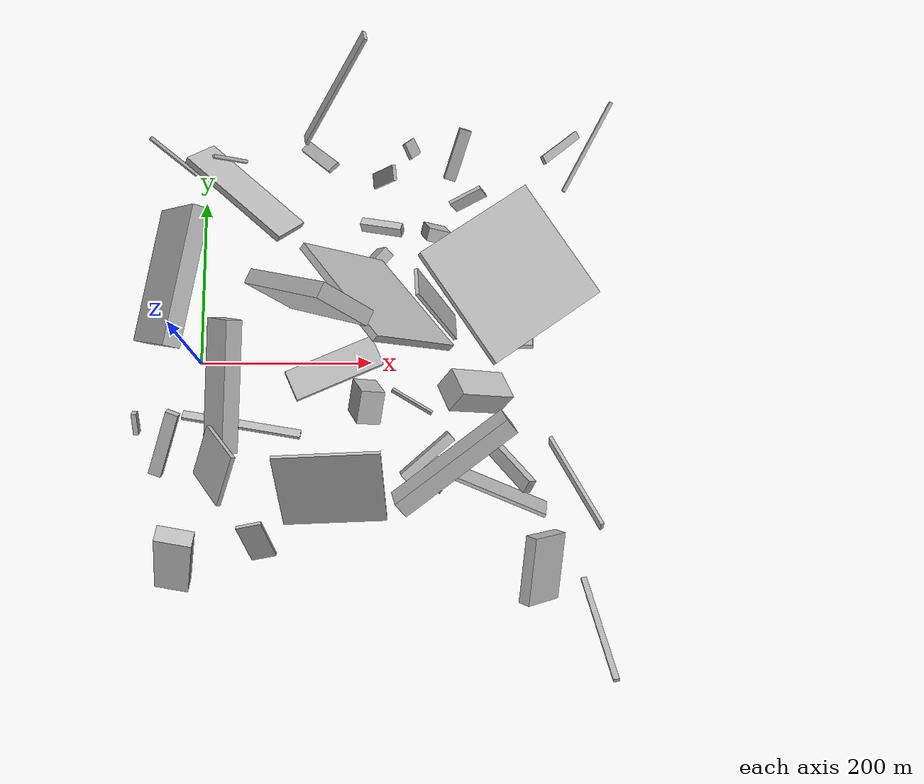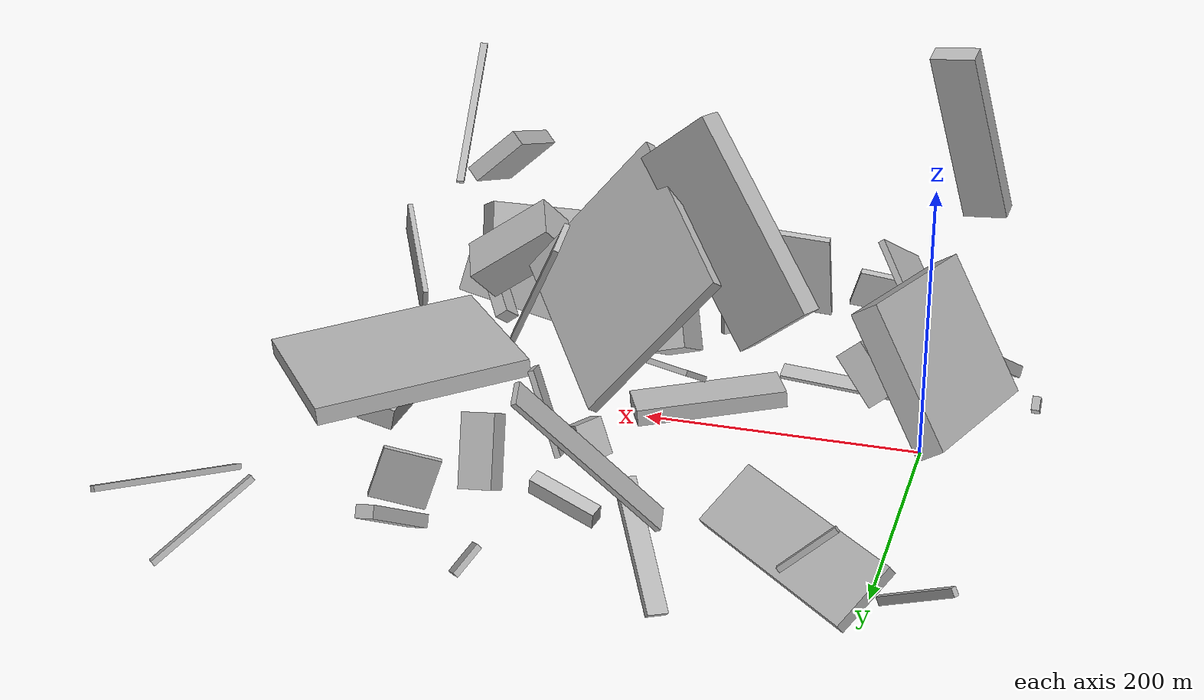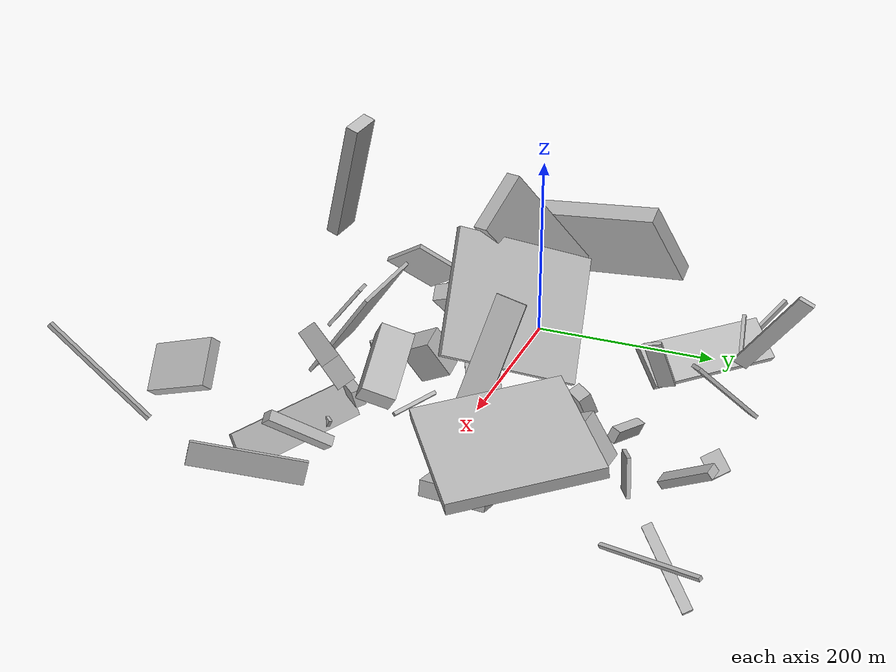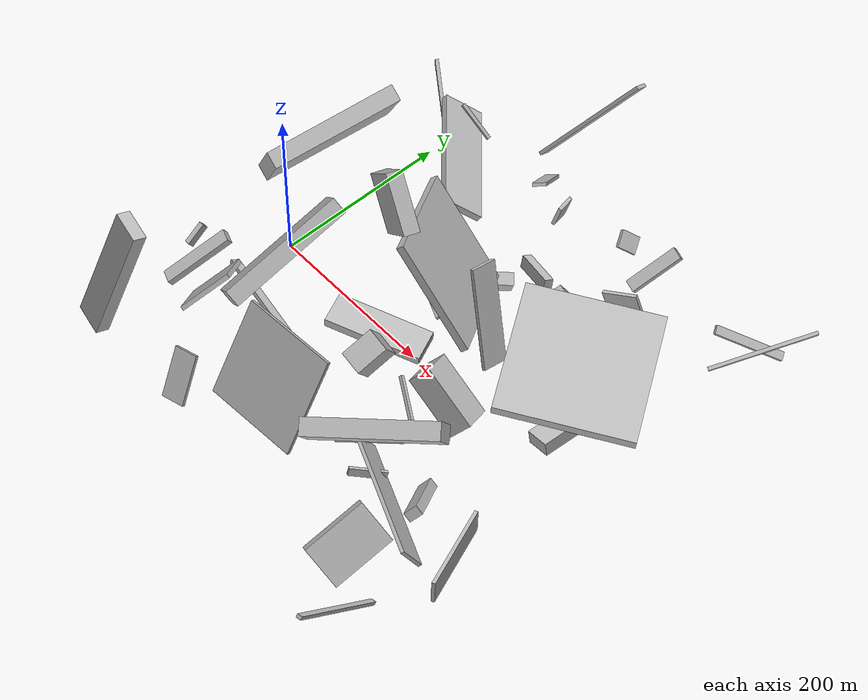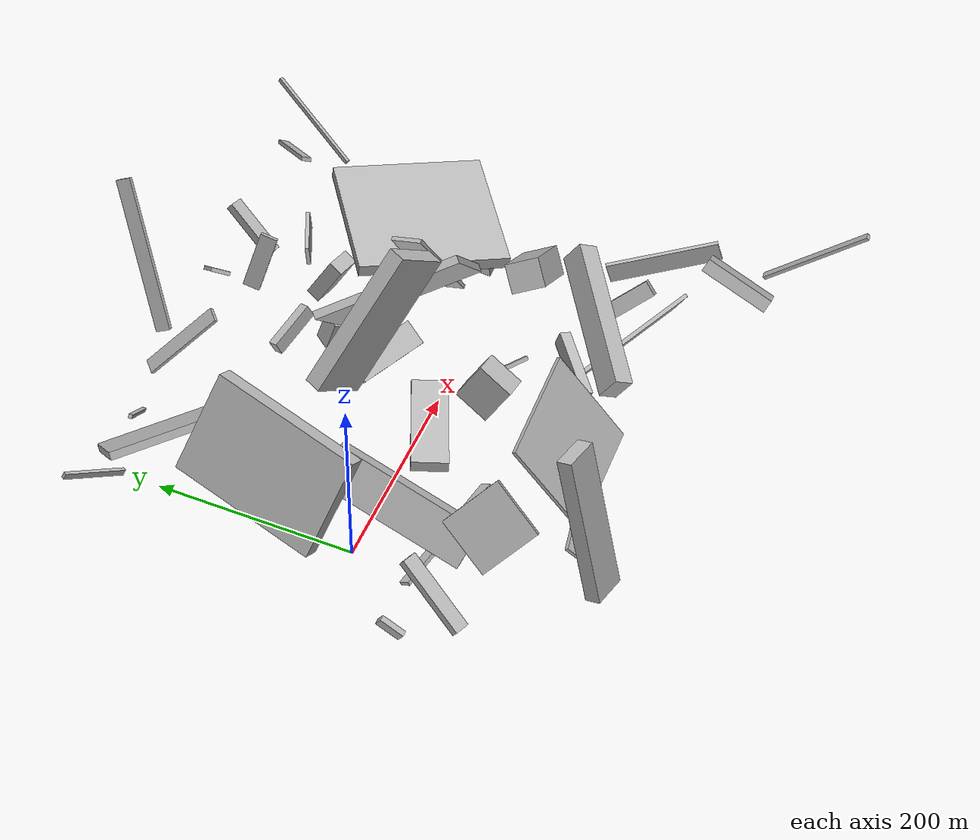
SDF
<sdf version="1.6">
 <world name="default">
  <scene>
   <sky><clouds><speed>12</speed></clouds></sky>
   <ambient>0.4 0.4 0.4 1</ambient>
   <background>0.7 0.7 0.7 1</background>
   <shadows>1</shadows>
  </scene>
  <gravity>0 0 -9.8066</gravity>
  <magnetic_field>6e-06 2.3e-05 -4.2e-05</magnetic_field>
  <physics default="0" name="default_physics" type="ode">
   <ode>
    <solver>
     <type>quick</type>
     <iters>10</iters>
     <sor>1.0</sor>
     <use_dynamic_moi_rescaling>0</use_dynamic_moi_rescaling>
    </solver>
    <constraints>
     <cfm>0</cfm>
     <erp>0.2</erp>
     <contact_max_correcting_vel>100</contact_max_correcting_vel>
     <contact_surface_layer>0.001</contact_surface_layer>
    </constraints>
   </ode>
   <max_step_size>0.004</max_step_size>
   <real_time_factor>1</real_time_factor>
   <real_time_update_rate>250</real_time_update_rate>
  </physics>
  <light name="sun" type="directional">
   <pose>0 0 10 0 0 0</pose>
   <diffuse>0.8 0.8 0.8 1</diffuse>
   <specular>0.2 0.2 0.2 1</specular>
   <attenuation>
    <range>1000</range>
    <constant>0.9</constant>
    <linear>0.01</linear>
    <quadratic>0.001</quadratic>
   </attenuation>
   <direction>-0.5 0.1 -0.9</direction>
  </light>
  <model name="building_1">
   <static>0</static>
   <pose>425.41884582298695 -145.96923131888164 33.68652082631902 -1.5123480149696447 -0.2445633406746255 -1.1243837225316533</pose>
   <link name="link">
    <gravity>0</gravity>
    <pose>0 0 2.0 0 0 0</pose>
    <collision name="collision"><geometry><box><size>113 25 4</size></box></geometry></collision>
    <visual name="visual">
     <cast_shadows>0</cast_shadows>
     <geometry><box><size>113 25 4</size></box></geometry>
     <material>
      <script>
       <uri>model://HANNAS_wall/materials/scripts</uri>
       <uri>model://HANNAS_wall/materials/textures</uri>
       <name>vrc/HANNAS_wall</name>
      </script>
     </material>
    </visual>
   </link>
  </model>
  <model name="building_2">
   <static>0</static>
   <pose>249.1018419877865 260.8764109453045 22.38938290813393 -0.5990334844402403 -0.6752568785302374 -2.233619556249659</pose>
   <link name="link">
    <gravity>0</gravity>
    <pose>0 0 2.0 0 0 0</pose>
    <collision name="collision"><geometry><box><size>24 20 4</size></box></geometry></collision>
    <visual name="visual">
     <cast_shadows>0</cast_shadows>
     <geometry><box><size>24 20 4</size></box></geometry>
     <material>
      <script>
       <uri>model://HANNAS_wall/materials/scripts</uri>
       <uri>model://HANNAS_wall/materials/textures</uri>
       <name>vrc/HANNAS_wall</name>
      </script>
     </material>
    </visual>
   </link>
  </model>
  <model name="building_3">
   <static>0</static>
   <pose>258.4251948768275 -111.10674847365107 36.97191823842569 -1.8116553040432277 0.157849931149378 -2.443473535293361</pose>
   <link name="link">
    <gravity>0</gravity>
    <pose>0 0 5.5 0 0 0</pose>
    <collision name="collision"><geometry><box><size>71 17 11</size></box></geometry></collision>
    <visual name="visual">
     <cast_shadows>0</cast_shadows>
     <geometry><box><size>71 17 11</size></box></geometry>
     <material>
      <script>
       <uri>model://HANNAS_wall/materials/scripts</uri>
       <uri>model://HANNAS_wall/materials/textures</uri>
       <name>vrc/HANNAS_wall</name>
      </script>
     </material>
    </visual>
   </link>
  </model>
  <model name="building_4">
   <static>0</static>
   <pose>315.4782951416325 193.17962473088272 35.478197174813964 1.5624156566761027 -0.33057298251725853 0.39293857082469835</pose>
   <link name="link">
    <gravity>0</gravity>
    <pose>0 0 2.0 0 0 0</pose>
    <collision name="collision"><geometry><box><size>40 38 4</size></box></geometry></collision>
    <visual name="visual">
     <cast_shadows>0</cast_shadows>
     <geometry><box><size>40 38 4</size></box></geometry>
     <material>
      <script>
       <uri>model://HANNAS_wall/materials/scripts</uri>
       <uri>model://HANNAS_wall/materials/textures</uri>
       <name>vrc/HANNAS_wall</name>
      </script>
     </material>
    </visual>
   </link>
  </model>
  <model name="building_5">
   <static>0</static>
   <pose>294.2843214857264 27.603662806520333 58.93577640061621 -0.27344497462733347 -0.4052798947871393 0.1297833659575057</pose>
   <link name="link">
    <gravity>0</gravity>
    <pose>0 0 56.5 0 0 0</pose>
    <collision name="collision"><geometry><box><size>4 31 113</size></box></geometry></collision>
    <visual name="visual">
     <cast_shadows>0</cast_shadows>
     <geometry><box><size>4 31 113</size></box></geometry>
     <material>
      <script>
       <uri>model://HANNAS_wall/materials/scripts</uri>
       <uri>model://HANNAS_wall/materials/textures</uri>
       <name>vrc/HANNAS_wall</name>
      </script>
     </material>
    </visual>
   </link>
  </model>
  <model name="building_6">
   <static>0</static>
   <pose>11.396450241202334 -107.1382190069006 48.621800371458505 0.7721951003902989 -0.553048172906597 1.1915686753651324</pose>
   <link name="link">
    <gravity>0</gravity>
    <pose>0 0 33.0 0 0 0</pose>
    <collision name="collision"><geometry><box><size>61 5 66</size></box></geometry></collision>
    <visual name="visual">
     <cast_shadows>0</cast_shadows>
     <geometry><box><size>61 5 66</size></box></geometry>
     <material>
      <script>
       <uri>model://HANNAS_wall/materials/scripts</uri>
       <uri>model://HANNAS_wall/materials/textures</uri>
       <name>vrc/HANNAS_wall</name>
      </script>
     </material>
    </visual>
   </link>
  </model>
  <model name="building_7">
   <static>0</static>
   <pose>92.36065893980799 59.16376775342304 112.13225129102705 -0.11476368460666875 -0.7020442306875092 2.787551134348521</pose>
   <link name="link">
    <gravity>0</gravity>
    <pose>0 0 75.0 0 0 0</pose>
    <collision name="collision"><geometry><box><size>65 17 150</size></box></geometry></collision>
    <visual name="visual">
     <cast_shadows>0</cast_shadows>
     <geometry><box><size>65 17 150</size></box></geometry>
     <material>
      <script>
       <uri>model://HANNAS_wall/materials/scripts</uri>
       <uri>model://HANNAS_wall/materials/textures</uri>
       <name>vrc/HANNAS_wall</name>
      </script>
     </material>
    </visual>
   </link>
  </model>
  <model name="building_8">
   <static>0</static>
   <pose>48.21933271109759 200.27985680341277 29.763908227894486 0.010285667784229631 -0.6583784781032607 -2.311334521179544</pose>
   <link name="link">
    <gravity>0</gravity>
    <pose>0 0 4.0 0 0 0</pose>
    <collision name="collision"><geometry><box><size>49 150 8</size></box></geometry></collision>
    <visual name="visual">
     <cast_shadows>0</cast_shadows>
     <geometry><box><size>49 150 8</size></box></geometry>
     <material>
      <script>
       <uri>model://HANNAS_wall/materials/scripts</uri>
       <uri>model://HANNAS_wall/materials/textures</uri>
       <name>vrc/HANNAS_wall</name>
      </script>
     </material>
    </visual>
   </link>
  </model>
  <model name="building_9">
   <static>0</static>
   <pose>-7.925936350055153 -250.14028089978902 83.46358773610366 -0.148243943863838 -0.3102997085063164 -1.7026222857802542</pose>
   <link name="link">
    <gravity>0</gravity>
    <pose>0 0 75.0 0 0 0</pose>
    <collision name="collision"><geometry><box><size>15 35 150</size></box></geometry></collision>
    <visual name="visual">
     <cast_shadows>0</cast_shadows>
     <geometry><box><size>15 35 150</size></box></geometry>
     <material>
      <script>
       <uri>model://HANNAS_wall/materials/scripts</uri>
       <uri>model://HANNAS_wall/materials/textures</uri>
       <name>vrc/HANNAS_wall</name>
      </script>
     </material>
    </visual>
   </link>
  </model>
  <model name="building_10">
   <static>0</static>
   <pose>169.5705967681315 99.11142795991428 107.00690799599982 -1.0160194227347048 -0.8740393589629073 -2.9889341867695483</pose>
   <link name="link">
    <gravity>0</gravity>
    <pose>0 0 72.0 0 0 0</pose>
    <collision name="collision"><geometry><box><size>130 8 144</size></box></geometry></collision>
    <visual name="visual">
     <cast_shadows>0</cast_shadows>
     <geometry><box><size>130 8 144</size></box></geometry>
     <material>
      <script>
       <uri>model://HANNAS_wall/materials/scripts</uri>
       <uri>model://HANNAS_wall/materials/textures</uri>
       <name>vrc/HANNAS_wall</name>
      </script>
     </material>
    </visual>
   </link>
  </model>
  <model name="building_11">
   <static>0</static>
   <pose>356.6603906418508 87.79812818271256 63.429762790281444 0.08518306670445398 -0.12248066234589806 2.1657730202997447</pose>
   <link name="link">
    <gravity>0</gravity>
    <pose>0 0 6.0 0 0 0</pose>
    <collision name="collision"><geometry><box><size>150 150 12</size></box></geometry></collision>
    <visual name="visual">
     <cast_shadows>0</cast_shadows>
     <geometry><box><size>150 150 12</size></box></geometry>
     <material>
      <script>
       <uri>model://HANNAS_wall/materials/scripts</uri>
       <uri>model://HANNAS_wall/materials/textures</uri>
       <name>vrc/HANNAS_wall</name>
      </script>
     </material>
    </visual>
   </link>
  </model>
  <model name="building_12">
   <static>0</static>
   <pose>154.66902727796696 -154.51459632258954 60.52455767634381 3.036649801283176 -0.9490487168488215 1.6860692565136683</pose>
   <link name="link">
    <gravity>0</gravity>
    <pose>0 0 2.0 0 0 0</pose>
    <collision name="collision"><geometry><box><size>111 117 4</size></box></geometry></collision>
    <visual name="visual">
     <cast_shadows>0</cast_shadows>
     <geometry><box><size>111 117 4</size></box></geometry>
     <material>
      <script>
       <uri>model://HANNAS_wall/materials/scripts</uri>
       <uri>model://HANNAS_wall/materials/textures</uri>
       <name>vrc/HANNAS_wall</name>
      </script>
     </material>
    </visual>
   </link>
  </model>
  <model name="building_13">
   <static>0</static>
   <pose>40.355276049076124 -33.9595860957018 45.46688877144153 0.46771348970614596 -0.8226482254614722 -0.4114859243746778</pose>
   <link name="link">
    <gravity>0</gravity>
    <pose>0 0 10.0 0 0 0</pose>
    <collision name="collision"><geometry><box><size>42 150 20</size></box></geometry></collision>
    <visual name="visual">
     <cast_shadows>0</cast_shadows>
     <geometry><box><size>42 150 20</size></box></geometry>
     <material>
      <script>
       <uri>model://HANNAS_wall/materials/scripts</uri>
       <uri>model://HANNAS_wall/materials/textures</uri>
       <name>vrc/HANNAS_wall</name>
      </script>
     </material>
    </visual>
   </link>
  </model>
  <model name="building_14">
   <static>0</static>
   <pose>206.53321475389288 11.808766008760855 12.067431972449988 -1.497862033680164 -0.05984029014858488 1.9797438045565339</pose>
   <link name="link">
    <gravity>0</gravity>
    <pose>0 0 54.5 0 0 0</pose>
    <collision name="collision"><geometry><box><size>36 12 109</size></box></geometry></collision>
    <visual name="visual">
     <cast_shadows>0</cast_shadows>
     <geometry><box><size>36 12 109</size></box></geometry>
     <material>
      <script>
       <uri>model://HANNAS_wall/materials/scripts</uri>
       <uri>model://HANNAS_wall/materials/textures</uri>
       <name>vrc/HANNAS_wall</name>
      </script>
     </material>
    </visual>
   </link>
  </model>
  <model name="building_15">
   <static>0</static>
   <pose>159.52816913935894 -134.3170620762469 24.44444350262728 -1.4918659393812355 0.17567735347807026 -0.8724252449274983</pose>
   <link name="link">
    <gravity>0</gravity>
    <pose>0 0 8.5 0 0 0</pose>
    <collision name="collision"><geometry><box><size>5 24 17</size></box></geometry></collision>
    <visual name="visual">
     <cast_shadows>0</cast_shadows>
     <geometry><box><size>5 24 17</size></box></geometry>
     <material>
      <script>
       <uri>model://HANNAS_wall/materials/scripts</uri>
       <uri>model://HANNAS_wall/materials/textures</uri>
       <name>vrc/HANNAS_wall</name>
      </script>
     </material>
    </visual>
   </link>
  </model>
  <model name="building_16">
   <static>0</static>
   <pose>34.864509518847655 234.64082866688216 52.26408411181643 1.361700220824906 -0.7191043469784069 -2.9622274168226297</pose>
   <link name="link">
    <gravity>0</gravity>
    <pose>0 0 2.0 0 0 0</pose>
    <collision name="collision"><geometry><box><size>47 4 4</size></box></geometry></collision>
    <visual name="visual">
     <cast_shadows>0</cast_shadows>
     <geometry><box><size>47 4 4</size></box></geometry>
     <material>
      <script>
       <uri>model://HANNAS_wall/materials/scripts</uri>
       <uri>model://HANNAS_wall/materials/textures</uri>
       <name>vrc/HANNAS_wall</name>
      </script>
     </material>
    </visual>
   </link>
  </model>
  <model name="building_17">
   <static>0</static>
   <pose>71.20728889992272 -208.50971982868973 25.944572456558397 2.8561587549786607 -0.8790887743890757 1.9620441247896967</pose>
   <link name="link">
    <gravity>0</gravity>
    <pose>0 0 2.0 0 0 0</pose>
    <collision name="collision"><geometry><box><size>56 29 4</size></box></geometry></collision>
    <visual name="visual">
     <cast_shadows>0</cast_shadows>
     <geometry><box><size>56 29 4</size></box></geometry>
     <material>
      <script>
       <uri>model://HANNAS_wall/materials/scripts</uri>
       <uri>model://HANNAS_wall/materials/textures</uri>
       <name>vrc/HANNAS_wall</name>
      </script>
     </material>
    </visual>
   </link>
  </model>
  <model name="building_18">
   <static>0</static>
   <pose>125.36688080624356 252.81628667916544 68.14058961959664 0.5518341070057043 -0.4851328915497878 2.996055654332618</pose>
   <link name="link">
    <gravity>0</gravity>
    <pose>0 0 75.0 0 0 0</pose>
    <collision name="collision"><geometry><box><size>4 16 150</size></box></geometry></collision>
    <visual name="visual">
     <cast_shadows>0</cast_shadows>
     <geometry><box><size>4 16 150</size></box></geometry>
     <material>
      <script>
       <uri>model://HANNAS_wall/materials/scripts</uri>
       <uri>model://HANNAS_wall/materials/textures</uri>
       <name>vrc/HANNAS_wall</name>
      </script>
     </material>
    </visual>
   </link>
  </model>
  <model name="building_19">
   <static>0</static>
   <pose>340.9454895488477 -50.922536570934135 76.9889760995326 -0.561056107888578 -0.8102111971725773 0.7766025932314022</pose>
   <link name="link">
    <gravity>0</gravity>
    <pose>0 0 35.5 0 0 0</pose>
    <collision name="collision"><geometry><box><size>29 34 71</size></box></geometry></collision>
    <visual name="visual">
     <cast_shadows>0</cast_shadows>
     <geometry><box><size>29 34 71</size></box></geometry>
     <material>
      <script>
       <uri>model://HANNAS_wall/materials/scripts</uri>
       <uri>model://HANNAS_wall/materials/textures</uri>
       <name>vrc/HANNAS_wall</name>
      </script>
     </material>
    </visual>
   </link>
  </model>
  <model name="building_20">
   <static>0</static>
   <pose>228.6858735981701 -170.63586561820998 64.9208192293678 1.2878978306739564 -0.5056195826132379 2.3338886542639066</pose>
   <link name="link">
    <gravity>0</gravity>
    <pose>0 0 75.0 0 0 0</pose>
    <collision name="collision"><geometry><box><size>20 28 150</size></box></geometry></collision>
    <visual name="visual">
     <cast_shadows>0</cast_shadows>
     <geometry><box><size>20 28 150</size></box></geometry>
     <material>
      <script>
       <uri>model://HANNAS_wall/materials/scripts</uri>
       <uri>model://HANNAS_wall/materials/textures</uri>
       <name>vrc/HANNAS_wall</name>
      </script>
     </material>
    </visual>
   </link>
  </model>
  <model name="building_21">
   <static>0</static>
   <pose>141.15140314237678 242.3479676477712 40.248836217672284 -0.7725262013866806 -0.15925537315774055 0.7386644940316217</pose>
   <link name="link">
    <gravity>0</gravity>
    <pose>0 0 2.0 0 0 0</pose>
    <collision name="collision"><geometry><box><size>15 91 4</size></box></geometry></collision>
    <visual name="visual">
     <cast_shadows>0</cast_shadows>
     <geometry><box><size>15 91 4</size></box></geometry>
     <material>
      <script>
       <uri>model://HANNAS_wall/materials/scripts</uri>
       <uri>model://HANNAS_wall/materials/textures</uri>
       <name>vrc/HANNAS_wall</name>
      </script>
     </material>
    </visual>
   </link>
  </model>
  <model name="building_22">
   <static>0</static>
   <pose>274.9750587867342 140.9851912540953 34.93475302200367 0.39666370568277065 1.0695983259111554 1.7492506712201168</pose>
   <link name="link">
    <gravity>0</gravity>
    <pose>0 0 7.5 0 0 0</pose>
    <collision name="collision"><geometry><box><size>52 26 15</size></box></geometry></collision>
    <visual name="visual">
     <cast_shadows>0</cast_shadows>
     <geometry><box><size>52 26 15</size></box></geometry>
     <material>
      <script>
       <uri>model://HANNAS_wall/materials/scripts</uri>
       <uri>model://HANNAS_wall/materials/textures</uri>
       <name>vrc/HANNAS_wall</name>
      </script>
     </material>
    </visual>
   </link>
  </model>
  <model name="building_23">
   <static>0</static>
   <pose>117.55613243460282 -85.83281688460622 7.003773934549702 1.5490462269805079 1.014428288584653 -1.7600789529180896</pose>
   <link name="link">
    <gravity>0</gravity>
    <pose>0 0 69.5 0 0 0</pose>
    <collision name="collision"><geometry><box><size>4 11 139</size></box></geometry></collision>
    <visual name="visual">
     <cast_shadows>0</cast_shadows>
     <geometry><box><size>4 11 139</size></box></geometry>
     <material>
      <script>
       <uri>model://HANNAS_wall/materials/scripts</uri>
       <uri>model://HANNAS_wall/materials/textures</uri>
       <name>vrc/HANNAS_wall</name>
      </script>
     </material>
    </visual>
   </link>
  </model>
  <model name="building_24">
   <static>0</static>
   <pose>-60.648812815067124 263.51158957881785 54.32785965853042 2.093396745703959 0.02881340680548251 1.0053173709794054</pose>
   <link name="link">
    <gravity>0</gravity>
    <pose>0 0 34.5 0 0 0</pose>
    <collision name="collision"><geometry><box><size>4 6 69</size></box></geometry></collision>
    <visual name="visual">
     <cast_shadows>0</cast_shadows>
     <geometry><box><size>4 6 69</size></box></geometry>
     <material>
      <script>
       <uri>model://HANNAS_wall/materials/scripts</uri>
       <uri>model://HANNAS_wall/materials/textures</uri>
       <name>vrc/HANNAS_wall</name>
      </script>
     </material>
    </visual>
   </link>
  </model>
  <model name="building_25">
   <static>0</static>
   <pose>351.42045062646054 -127.40970916103686 37.474965196713676 2.411615899161941 -0.640642512391642 1.0985547887115743</pose>
   <link name="link">
    <gravity>0</gravity>
    <pose>0 0 5.5 0 0 0</pose>
    <collision name="collision"><geometry><box><size>16 71 11</size></box></geometry></collision>
    <visual name="visual">
     <cast_shadows>0</cast_shadows>
     <geometry><box><size>16 71 11</size></box></geometry>
     <material>
      <script>
       <uri>model://HANNAS_wall/materials/scripts</uri>
       <uri>model://HANNAS_wall/materials/textures</uri>
       <name>vrc/HANNAS_wall</name>
      </script>
     </material>
    </visual>
   </link>
  </model>
  <model name="building_26">
   <static>0</static>
   <pose>205.5674514790541 198.57696542766752 73.43501417183107 -0.26213698673351044 -0.34238826699652153 -2.9686295973735892</pose>
   <link name="link">
    <gravity>0</gravity>
    <pose>0 0 29.5 0 0 0</pose>
    <collision name="collision"><geometry><box><size>4 17 59</size></box></geometry></collision>
    <visual name="visual">
     <cast_shadows>0</cast_shadows>
     <geometry><box><size>4 17 59</size></box></geometry>
     <material>
      <script>
       <uri>model://HANNAS_wall/materials/scripts</uri>
       <uri>model://HANNAS_wall/materials/textures</uri>
       <name>vrc/HANNAS_wall</name>
      </script>
     </material>
    </visual>
   </link>
  </model>
  <model name="building_27">
   <static>0</static>
   <pose>425.63094946477224 -249.2041355697062 58.827539333330726 -0.8273400162422924 0.07705906892723835 -2.9813977372745177</pose>
   <link name="link">
    <gravity>0</gravity>
    <pose>0 0 64.5 0 0 0</pose>
    <collision name="collision"><geometry><box><size>6 4 129</size></box></geometry></collision>
    <visual name="visual">
     <cast_shadows>0</cast_shadows>
     <geometry><box><size>6 4 129</size></box></geometry>
     <material>
      <script>
       <uri>model://HANNAS_wall/materials/scripts</uri>
       <uri>model://HANNAS_wall/materials/textures</uri>
       <name>vrc/HANNAS_wall</name>
      </script>
     </material>
    </visual>
   </link>
  </model>
  <model name="building_28">
   <static>0</static>
   <pose>205.04607905213842 118.8784974061554 28.17652011802044 -0.4359605260093251 -0.08886311079427607 -2.2681705005594672</pose>
   <link name="link">
    <gravity>0</gravity>
    <pose>0 0 13.5 0 0 0</pose>
    <collision name="collision"><geometry><box><size>21 14 27</size></box></geometry></collision>
    <visual name="visual">
     <cast_shadows>0</cast_shadows>
     <geometry><box><size>21 14 27</size></box></geometry>
     <material>
      <script>
       <uri>model://HANNAS_wall/materials/scripts</uri>
       <uri>model://HANNAS_wall/materials/textures</uri>
       <name>vrc/HANNAS_wall</name>
      </script>
     </material>
    </visual>
   </link>
  </model>
  <model name="building_29">
   <static>0</static>
   <pose>191.21088341316997 -71.5935632240194 42.68422933940353 1.068218790376897 -0.28986709081385975 3.1185286522955002</pose>
   <link name="link">
    <gravity>0</gravity>
    <pose>0 0 19.0 0 0 0</pose>
    <collision name="collision"><geometry><box><size>27 43 38</size></box></geometry></collision>
    <visual name="visual">
     <cast_shadows>0</cast_shadows>
     <geometry><box><size>27 43 38</size></box></geometry>
     <material>
      <script>
       <uri>model://HANNAS_wall/materials/scripts</uri>
       <uri>model://HANNAS_wall/materials/textures</uri>
       <name>vrc/HANNAS_wall</name>
      </script>
     </material>
    </visual>
   </link>
  </model>
  <model name="building_30">
   <static>0</static>
   <pose>372.01383756529435 -235.4914720744314 88.34667604555197 0.7813474173970566 -0.33585342576022 1.4657067860444233</pose>
   <link name="link">
    <gravity>0</gravity>
    <pose>0 0 6.5 0 0 0</pose>
    <collision name="collision"><geometry><box><size>71 49 13</size></box></geometry></collision>
    <visual name="visual">
     <cast_shadows>0</cast_shadows>
     <geometry><box><size>71 49 13</size></box></geometry>
     <material>
      <script>
       <uri>model://HANNAS_wall/materials/scripts</uri>
       <uri>model://HANNAS_wall/materials/textures</uri>
       <name>vrc/HANNAS_wall</name>
      </script>
     </material>
    </visual>
   </link>
  </model>
  <model name="building_31">
   <static>0</static>
   <pose>406.23809851398056 235.2577556026324 45.772745507950404 2.150752132451373 -0.3794150341012122 2.1338115323139504</pose>
   <link name="link">
    <gravity>0</gravity>
    <pose>0 0 42.5 0 0 0</pose>
    <collision name="collision"><geometry><box><size>10 4 85</size></box></geometry></collision>
    <visual name="visual">
     <cast_shadows>0</cast_shadows>
     <geometry><box><size>10 4 85</size></box></geometry>
     <material>
      <script>
       <uri>model://HANNAS_wall/materials/scripts</uri>
       <uri>model://HANNAS_wall/materials/textures</uri>
       <name>vrc/HANNAS_wall</name>
      </script>
     </material>
    </visual>
   </link>
  </model>
  <model name="building_32">
   <static>0</static>
   <pose>284.91797792071935 -136.37013005573942 15.321885554483178 -1.2595529236997993 -0.28893072208360515 -2.2300077921492667</pose>
   <link name="link">
    <gravity>0</gravity>
    <pose>0 0 2.0 0 0 0</pose>
    <collision name="collision"><geometry><box><size>41 9 4</size></box></geometry></collision>
    <visual name="visual">
     <cast_shadows>0</cast_shadows>
     <geometry><box><size>41 9 4</size></box></geometry>
     <material>
      <script>
       <uri>model://HANNAS_wall/materials/scripts</uri>
       <uri>model://HANNAS_wall/materials/textures</uri>
       <name>vrc/HANNAS_wall</name>
      </script>
     </material>
    </visual>
   </link>
  </model>
  <model name="building_33">
   <static>0</static>
   <pose>-42.771579060464575 84.96931967918654 72.66570152906142 0.19008964150784946 0.5633435325824315 -0.10767594029441183</pose>
   <link name="link">
    <gravity>0</gravity>
    <pose>0 0 51.5 0 0 0</pose>
    <collision name="collision"><geometry><box><size>19 150 103</size></box></geometry></collision>
    <visual name="visual">
     <cast_shadows>0</cast_shadows>
     <geometry><box><size>19 150 103</size></box></geometry>
     <material>
      <script>
       <uri>model://HANNAS_wall/materials/scripts</uri>
       <uri>model://HANNAS_wall/materials/textures</uri>
       <name>vrc/HANNAS_wall</name>
      </script>
     </material>
    </visual>
   </link>
  </model>
  <model name="building_34">
   <static>0</static>
   <pose>178.62171542697513 36.22790820698326 62.368585604493006 -0.0580352693905248 -1.0187195442077588 -1.9293774582873724</pose>
   <link name="link">
    <gravity>0</gravity>
    <pose>0 0 13.0 0 0 0</pose>
    <collision name="collision"><geometry><box><size>4 75 26</size></box></geometry></collision>
    <visual name="visual">
     <cast_shadows>0</cast_shadows>
     <geometry><box><size>4 75 26</size></box></geometry>
     <material>
      <script>
       <uri>model://HANNAS_wall/materials/scripts</uri>
       <uri>model://HANNAS_wall/materials/textures</uri>
       <name>vrc/HANNAS_wall</name>
      </script>
     </material>
    </visual>
   </link>
  </model>
  <model name="building_35">
   <static>0</static>
   <pose>298.03233543352746 247.98654893075843 40.24223079899333 1.8316305556301533 -0.5448824608540135 1.2231619570314176</pose>
   <link name="link">
    <gravity>0</gravity>
    <pose>0 0 7.0 0 0 0</pose>
    <collision name="collision"><geometry><box><size>62 9 14</size></box></geometry></collision>
    <visual name="visual">
     <cast_shadows>0</cast_shadows>
     <geometry><box><size>62 9 14</size></box></geometry>
     <material>
      <script>
       <uri>model://HANNAS_wall/materials/scripts</uri>
       <uri>model://HANNAS_wall/materials/textures</uri>
       <name>vrc/HANNAS_wall</name>
      </script>
     </material>
    </visual>
   </link>
  </model>
  <model name="building_36">
   <static>0</static>
   <pose>-35.358688426178006 -100.52419597580216 34.319353843105496 -3.0767603311401364 -0.5606125183139893 1.1826392565163906</pose>
   <link name="link">
    <gravity>0</gravity>
    <pose>0 0 4.5 0 0 0</pose>
    <collision name="collision"><geometry><box><size>81 15 9</size></box></geometry></collision>
    <visual name="visual">
     <cast_shadows>0</cast_shadows>
     <geometry><box><size>81 15 9</size></box></geometry>
     <material>
      <script>
       <uri>model://HANNAS_wall/materials/scripts</uri>
       <uri>model://HANNAS_wall/materials/textures</uri>
       <name>vrc/HANNAS_wall</name>
      </script>
     </material>
    </visual>
   </link>
  </model>
  <model name="building_37">
   <static>0</static>
   <pose>378.6804874731916 81.07477309508566 17.65495194268776 -1.5644979415939286 0.20252120364480308 3.091597357232362</pose>
   <link name="link">
    <gravity>0</gravity>
    <pose>0 0 33.5 0 0 0</pose>
    <collision name="collision"><geometry><box><size>27 16 67</size></box></geometry></collision>
    <visual name="visual">
     <cast_shadows>0</cast_shadows>
     <geometry><box><size>27 16 67</size></box></geometry>
     <material>
      <script>
       <uri>model://HANNAS_wall/materials/scripts</uri>
       <uri>model://HANNAS_wall/materials/textures</uri>
       <name>vrc/HANNAS_wall</name>
      </script>
     </material>
    </visual>
   </link>
  </model>
  <model name="building_38">
   <static>0</static>
   <pose>245.7121595817181 -51.38191777951817 20.626755861652814 0.1676891198195765 0.6957293734497865 1.1528739504177083</pose>
   <link name="link">
    <gravity>0</gravity>
    <pose>0 0 2.0 0 0 0</pose>
    <collision name="collision"><geometry><box><size>4 53 4</size></box></geometry></collision>
    <visual name="visual">
     <cast_shadows>0</cast_shadows>
     <geometry><box><size>4 53 4</size></box></geometry>
     <material>
      <script>
       <uri>model://HANNAS_wall/materials/scripts</uri>
       <uri>model://HANNAS_wall/materials/textures</uri>
       <name>vrc/HANNAS_wall</name>
      </script>
     </material>
    </visual>
   </link>
  </model>
  <model name="building_39">
   <static>0</static>
   <pose>394.98909245764685 -173.70856585263823 19.539886702771387 -1.558813348582115 -0.49094400884078776 1.1662685320483948</pose>
   <link name="link">
    <gravity>0</gravity>
    <pose>0 0 75.0 0 0 0</pose>
    <collision name="collision"><geometry><box><size>4 39 150</size></box></geometry></collision>
    <visual name="visual">
     <cast_shadows>0</cast_shadows>
     <geometry><box><size>4 39 150</size></box></geometry>
     <material>
      <script>
       <uri>model://HANNAS_wall/materials/scripts</uri>
       <uri>model://HANNAS_wall/materials/textures</uri>
       <name>vrc/HANNAS_wall</name>
      </script>
     </material>
    </visual>
   </link>
  </model>
  <model name="building_40">
   <static>0</static>
   <pose>-72.38112017741561 -74.43901119355463 16.76904476983252 2.5663535171958936 0.03544020313283963 -3.1209189392021077</pose>
   <link name="link">
    <gravity>0</gravity>
    <pose>0 0 5.0 0 0 0</pose>
    <collision name="collision"><geometry><box><size>6 26 10</size></box></geometry></collision>
    <visual name="visual">
     <cast_shadows>0</cast_shadows>
     <geometry><box><size>6 26 10</size></box></geometry>
     <material>
      <script>
       <uri>model://HANNAS_wall/materials/scripts</uri>
       <uri>model://HANNAS_wall/materials/textures</uri>
       <name>vrc/HANNAS_wall</name>
      </script>
     </material>
    </visual>
   </link>
  </model>
  <model name="building_41">
   <static>0</static>
   <pose>430.84738858347947 201.3829832565954 32.000668351958495 1.3101997232137177 -0.3242544095411017 2.715174677581608</pose>
   <link name="link">
    <gravity>0</gravity>
    <pose>0 0 59.5 0 0 0</pose>
    <collision name="collision"><geometry><box><size>4 4 119</size></box></geometry></collision>
    <visual name="visual">
     <cast_shadows>0</cast_shadows>
     <geometry><box><size>4 4 119</size></box></geometry>
     <material>
      <script>
       <uri>model://HANNAS_wall/materials/scripts</uri>
       <uri>model://HANNAS_wall/materials/textures</uri>
       <name>vrc/HANNAS_wall</name>
      </script>
     </material>
    </visual>
   </link>
  </model>
  <model name="building_42">
   <static>0</static>
   <pose>212.33631577527044 157.8482281666528 20.457497260031094 2.4390193452660593 -1.1618667955846906 1.9768989557959322</pose>
   <link name="link">
    <gravity>0</gravity>
    <pose>0 0 5.0 0 0 0</pose>
    <collision name="collision"><geometry><box><size>14 51 10</size></box></geometry></collision>
    <visual name="visual">
     <cast_shadows>0</cast_shadows>
     <geometry><box><size>14 51 10</size></box></geometry>
     <material>
      <script>
       <uri>model://HANNAS_wall/materials/scripts</uri>
       <uri>model://HANNAS_wall/materials/textures</uri>
       <name>vrc/HANNAS_wall</name>
      </script>
     </material>
    </visual>
   </link>
  </model>
 </world>
</sdf>
